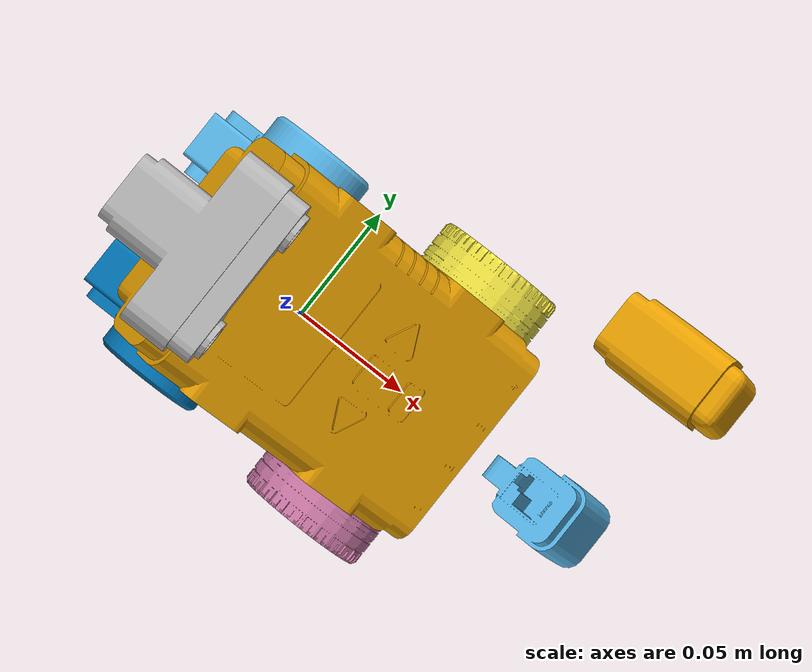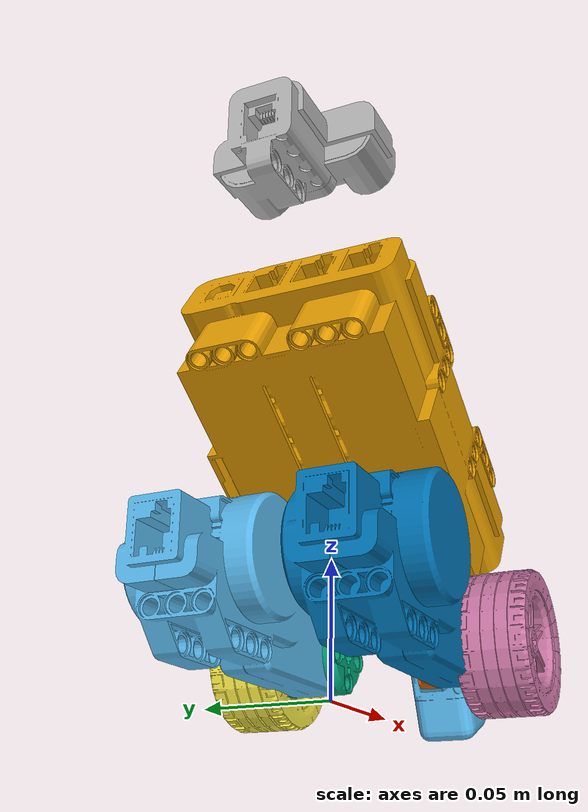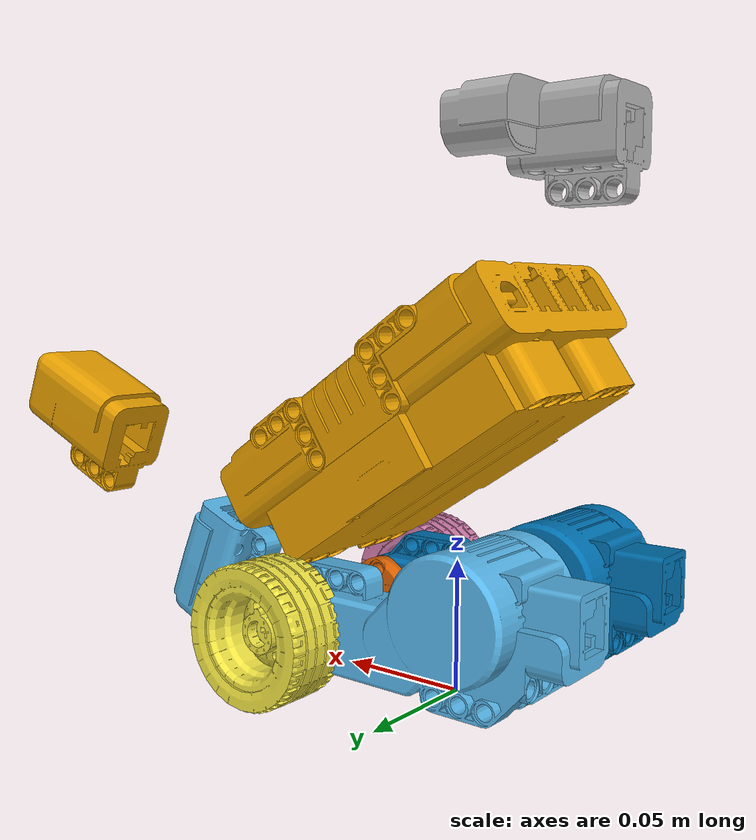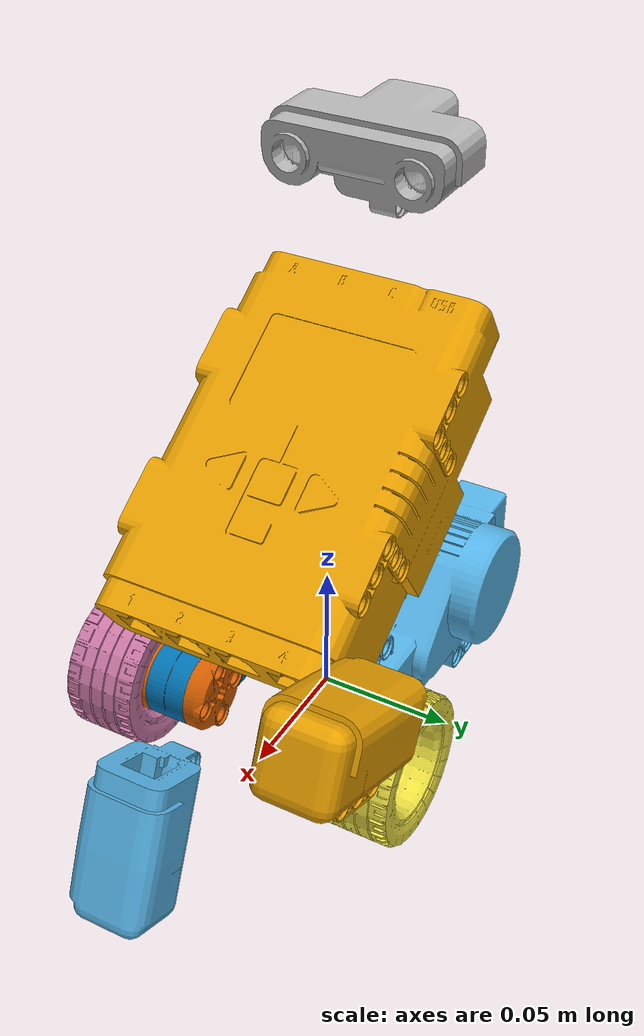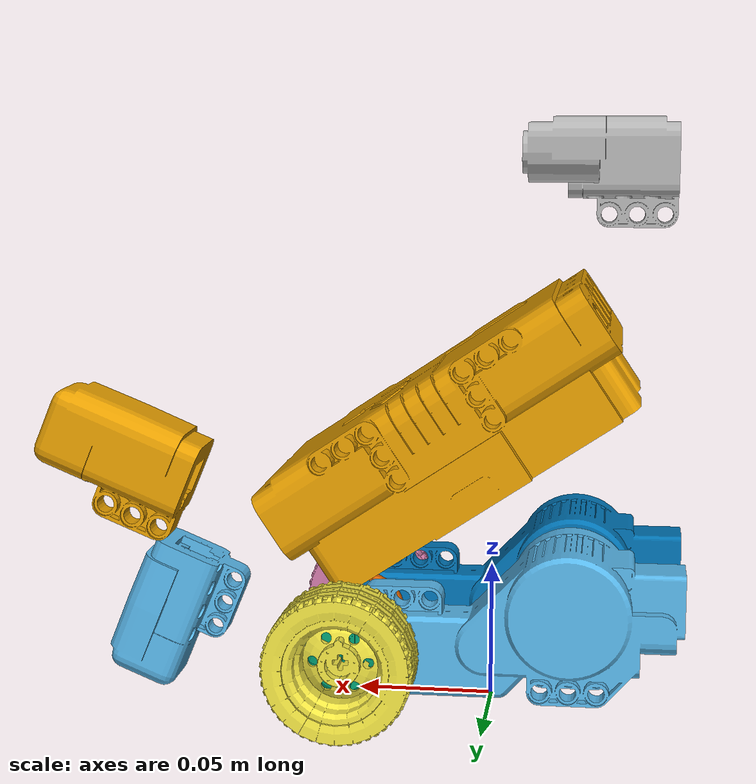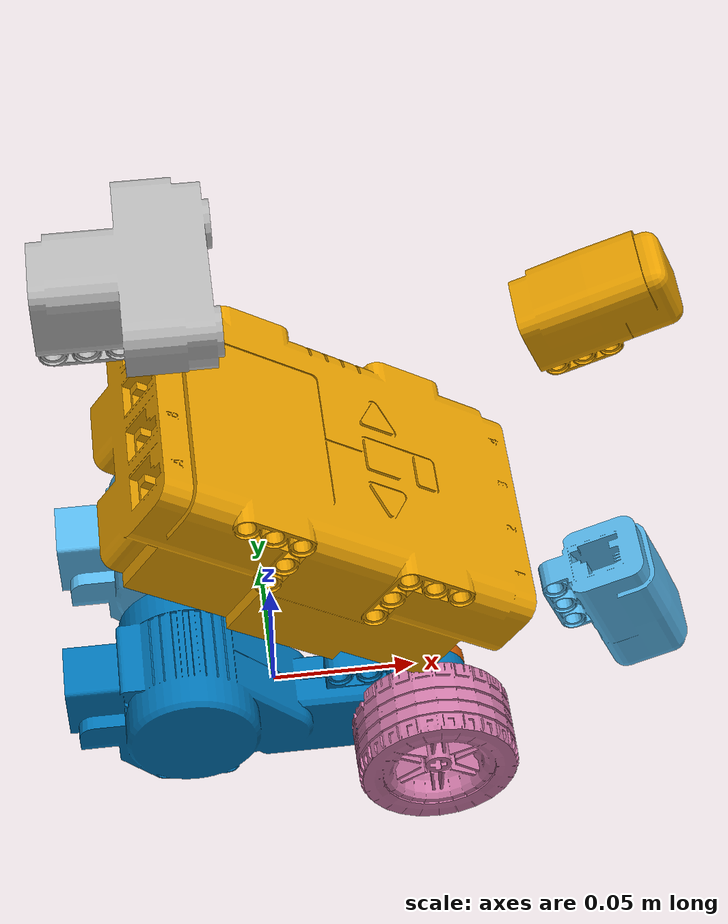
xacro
<?xml version="1.0"?>
<robot xmlns:xacro="http://www.ros.org/wiki/xacro" name="nxt" >

    <xacro:include filename="$(find nxt_description)/urdf/nxt.urdf.xacro" />

    <xacro:nxt_robot prefix="nxt/"/>

    <link name="nxt/base_footprint" />

    <joint name="nxt/base_footprint_joint" type="fixed">
        <parent link="nxt/base_footprint" />
        <child link = "nxt/base_link" />
        <origin xyz="0.0 0.0 0.08" rpy="0.0 0.0 0.0" />
    </joint>

</robot>

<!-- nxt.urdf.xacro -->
<robot xmlns:xacro="http://www.ros.org/wiki/xacro" name="nxt">

    <property name="pi" value="3.14159265" />

    <!-- @todo Inertia parameters -->
    <property name="base_mass" value="4.0" />

    <xacro:macro name="nxt_robot_motor" params="prefix parent motor_id motor_off_y wheel_off_y">

        <joint name="${prefix}${motor_id}motor_base_joint" type="fixed">
            <parent link="${prefix}${parent}" />
            <child link = "${prefix}${motor_id}motor_link" />
            <origin xyz=".05 ${motor_off_y} -0.055" rpy="0.0 ${pi} 0.0" />
        </joint>

        <link name="${prefix}${motor_id}motor_link">
            <visual>
                <geometry>
                    <mesh filename="package://nxt_description/meshes/Motor.dae" />
                </geometry>
                <origin xyz="0.0 0.0 0.0" rpy="0.0 0.0 ${pi/2}"/>
            </visual>
            <collision>
                <geometry>
                    <mesh filename="package://nxt_description/meshes/Motor.dae" />
                </geometry>
                <origin xyz="0.0 0.0 0.0" rpy="0.0 0.0 ${pi/2}"/>
            </collision>
        </link>

        <joint name="${prefix}${motor_id}motor_joint" type="continuous">
            <parent link="${prefix}${motor_id}motor_link" />
            <child link = "${prefix}${motor_id}motor_servo_link" />
            <origin xyz="0.0 0.0 0.0" rpy="0.0 0.0 0.0" />
             <axis xyz="0 1 0" />
        </joint>

        <link name="${prefix}${motor_id}motor_servo_link">
            <visual>
                <geometry>
                    <mesh filename="package://nxt_description/meshes/MotorServo.dae" />
                </geometry>
                <origin xyz="0.0 0.0 0.0" rpy="0.0 0.0 ${pi/2}"/>
            </visual>
            <collision>
                <geometry>
                    <mesh filename="package://nxt_description/meshes/MotorServo.dae" />
                </geometry>
                <origin xyz="0.0 0.0 0.0" rpy="0.0 0.0 ${pi/2}"/>
            </collision>
        </link>

        <joint name="${prefix}${motor_id}servo_to_wheel_joint" type="fixed">
            <parent link="${prefix}${motor_id}motor_servo_link" />
            <child link = "${prefix}${motor_id}motor_wheel_link" />
            <origin xyz="0.0 ${wheel_off_y} 0.0" rpy="0.0 0.0 0.0" />
        </joint>

        <link name="${prefix}${motor_id}motor_wheel_link">
            <visual>
                <geometry>
                    <mesh filename="package://nxt_description/meshes/Wheel.dae" />
                </geometry>
                <origin xyz="0.0 0.0 0.0" rpy="0.0 0.0 0.0"/>
            </visual>
            <collision>
                <geometry>
                    <mesh filename="package://nxt_description/meshes/Wheel.dae" />
                </geometry>
                <origin xyz="0.0 0.0 0.0" rpy="0.0 0.0 0.0"/>
            </collision>
        </link>

    </xacro:macro>

    <xacro:macro name="nxt_robot_ultrasonic_sensor" params="prefix parent sensor_id ">

        <joint name="${prefix}${sensor_id}sensor_joint" type="fixed">
            <parent link="${prefix}${parent}" />
            <child link = "${prefix}${sensor_id}sensor_link" />
            <origin xyz="-.045 0 0.12" rpy="0.0 0.0 0.0" />
        </joint>

        <link name="${prefix}${sensor_id}sensor_link">
            <visual>
                <geometry>
                    <mesh filename="package://nxt_description/meshes/sensors/UltraSonicSensor.dae" />
                </geometry>
                <origin xyz="0.0 0.0 0.0" rpy="0.0 ${pi} ${pi/2}"/>
            </visual>
            <collision>
                <geometry>
                    <mesh filename="package://nxt_description/meshes/sensors/UltraSonicSensor.dae" />
                </geometry>
                <origin xyz="0.0 0.0 0.0" rpy="0.0 ${pi} ${pi/2}"/>
            </collision>
        </link>

    </xacro:macro>

    <xacro:macro name="nxt_robot_magnetic_sensor" params="prefix parent sensor_id ">

        <joint name="${prefix}${sensor_id}sensor_joint" type="fixed">
            <parent link="${prefix}${parent}" />
            <child link = "${prefix}${sensor_id}sensor_link" />
            <origin xyz=".11 0.07 0.02" rpy="0.0 ${-pi/8} 0.0" />
        </joint>

        <link name="${prefix}${sensor_id}sensor_link">
            <visual>
                <geometry>
                    <mesh filename="package://nxt_description/meshes/sensors/MagneticSensor.dae" />
                </geometry>
                <origin xyz="0.0 0.0 -0.02" rpy="0.0 0.0 ${pi/2}"/>
            </visual>
            <collision>
                <geometry>
                    <mesh filename="package://nxt_description/meshes/sensors/MagneticSensor.dae" />
                </geometry>
                <origin xyz="0.0 0.0 -0.02" rpy="0.0 0.0 ${pi/2}"/>
            </collision>
        </link>

    </xacro:macro>

   <xacro:macro name="nxt_robot_light_sensor" params="prefix parent sensor_id ">

        <joint name="${prefix}${sensor_id}sensor_joint" type="fixed">
            <parent link="${prefix}${parent}" />
            <child link = "${prefix}${sensor_id}sensor_link" />
            <origin xyz=".12 0 -0.04" rpy="0.0 ${3*pi/8} 0.0" />
        </joint>

        <link name="${prefix}${sensor_id}sensor_link">
            <visual>
                <geometry>
                    <mesh filename="package://nxt_description/meshes/sensors/MagneticSensor.dae" />
                </geometry>
                <origin xyz="0.0 0.0 -0.02" rpy="0.0 0.0 ${pi/2}"/>
            </visual>
            <collision>
                <geometry>
                    <mesh filename="package://nxt_description/meshes/sensors/MagneticSensor.dae" />
                </geometry>
                <origin xyz="0.0 0.0 -0.02" rpy="0.0 0.0 ${pi/2}"/>
            </collision>
        </link>

    </xacro:macro>

    <xacro:macro name="nxt_robot" params="prefix">

        <!-- Base %%%%%%%%%%%%%%%%%%%%%%%%%%%%%%%%%%%%%%%%%%%%%%%%%%%%%%%%%%%%%%%%%%%%%%%%%%%%%%%%%%%%%%%%%%%%%%%%%%%%%%%% -->

        <link name="${prefix}base_link" >
            <visual>
                <geometry>
                    <!--box size="0.250 .160 ${shoulder_height}"/ -->
                    <mesh filename="package://nxt_description/meshes/NXTBrick.dae" />
                </geometry>
                <origin xyz="0.0 0.0 0.0" rpy="${3*pi/16} 0.0 ${pi/2}"/>
            </visual>
            <collision>
                <geometry>
                    <mesh filename="package://nxt_description/meshes/NXTBrick.dae" />
                </geometry>
                <origin xyz="0.0 0.0 0.0" rpy="0.0 0.0 0.0"/>
            </collision>
        </link>

        <xacro:nxt_robot_motor prefix="${prefix}" parent="base_link" motor_id="right_" motor_off_y="0.03" wheel_off_y ="0.02"/>
        <xacro:nxt_robot_motor prefix="${prefix}" parent="base_link" motor_id="left_" motor_off_y="-0.03" wheel_off_y ="-0.02"/>

        <xacro:nxt_robot_ultrasonic_sensor prefix="${prefix}" parent="base_link" sensor_id="ultrasonic_" />
        <xacro:nxt_robot_magnetic_sensor prefix="${prefix}" parent="base_link" sensor_id="magnetic_" />
        <xacro:nxt_robot_light_sensor prefix="${prefix}" parent="base_link" sensor_id="light_" />

    </xacro:macro>

</robot>
